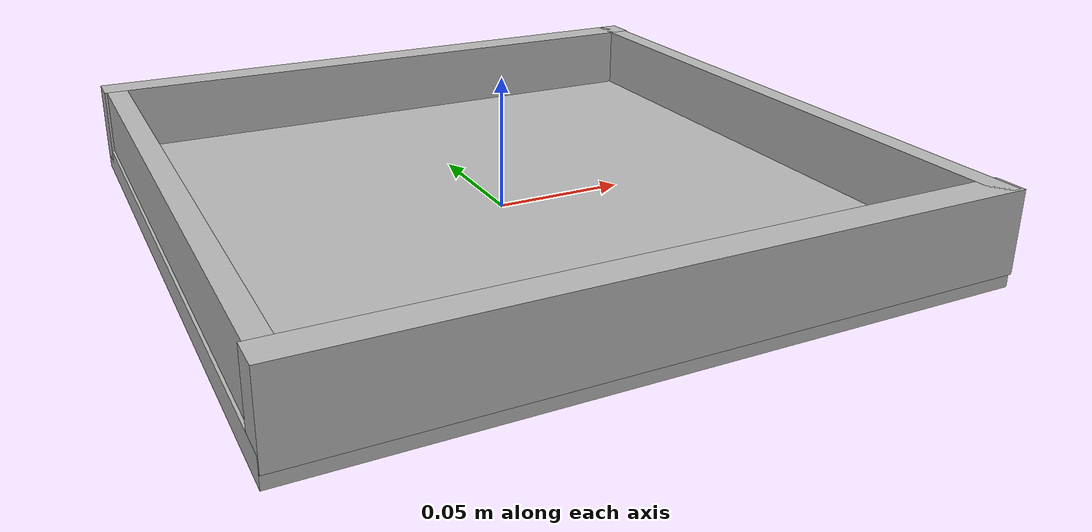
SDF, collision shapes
<?xml version='1.0'?>
<sdf version='1.6'>
  <model name='green_tray'>
    <static>true</static>
    <link name='link'>
      <self_collide>0</self_collide>
      <enable_wind>0</enable_wind>
      <kinematic>0</kinematic>
      <pose frame=''>0 0 0 0 -0 0</pose>
      <gravity>1</gravity>
      <inertial>
        <mass>1</mass>
        <pose frame=''>0 0 0 0 -0 0</pose>
        <inertia>
          <ixx>1</ixx>
          <ixy>0</ixy>
          <ixz>0</ixz>
          <iyy>1</iyy>
          <iyz>0</iyz>
          <izz>1</izz>
        </inertia>
      </inertial>
      <visual name='visual'>
        <pose frame=''>0 0 0.005 0 -0 0</pose>
        <geometry>
          <mesh>
            <scale>0.5 0.5 0.5</scale>
            <uri>model://green_tray/meshes/green_tray.dae</uri>
          </mesh>
        </geometry>
      </visual>
      <collision name='front_wall'>
        <laser_retro>0</laser_retro>
        <max_contacts>10</max_contacts>
        <pose frame=''>0.12 0 0.015 0 -0 0</pose>
        <geometry>
          <box>
            <size>0.008 0.25 0.03</size>
          </box>
        </geometry>
        <surface>
          <friction>
            <ode>
              <mu>1</mu>
              <mu2>1</mu2>
              <fdir1>0 0 0</fdir1>
              <slip1>0</slip1>
              <slip2>0</slip2>
            </ode>
            <torsional>
              <coefficient>1</coefficient>
              <patch_radius>0</patch_radius>
              <surface_radius>0</surface_radius>
              <use_patch_radius>1</use_patch_radius>
              <ode>
                <slip>0</slip>
              </ode>
            </torsional>
          </friction>
          <bounce>
            <restitution_coefficient>0</restitution_coefficient>
            <threshold>1e+06</threshold>
          </bounce>
          <contact>
            <collide_without_contact>0</collide_without_contact>
            <collide_without_contact_bitmask>1</collide_without_contact_bitmask>
            <collide_bitmask>1</collide_bitmask>
            <ode>
              <soft_cfm>0</soft_cfm>
              <soft_erp>0.2</soft_erp>
              <kp>1e+13</kp>
              <kd>1</kd>
              <max_vel>0.01</max_vel>
              <min_depth>0</min_depth>
            </ode>
            <bullet>
              <split_impulse>1</split_impulse>
              <split_impulse_penetration_threshold>-0.01</split_impulse_penetration_threshold>
              <soft_cfm>0</soft_cfm>
              <soft_erp>0.2</soft_erp>
              <kp>1e+13</kp>
              <kd>1</kd>
            </bullet>
          </contact>
        </surface>
      </collision>
      <collision name='right_wall'>
        <laser_retro>0</laser_retro>
        <max_contacts>10</max_contacts>
        <pose frame=''>0 -0.12 0.015 0 -0 0</pose>
        <geometry>
          <box>
            <size>0.25 0.012 0.03</size>
          </box>
        </geometry>
        <surface>
          <friction>
            <ode>
              <mu>1</mu>
              <mu2>1</mu2>
              <fdir1>0 0 0</fdir1>
              <slip1>0</slip1>
              <slip2>0</slip2>
            </ode>
            <torsional>
              <coefficient>1</coefficient>
              <patch_radius>0</patch_radius>
              <surface_radius>0</surface_radius>
              <use_patch_radius>1</use_patch_radius>
              <ode>
                <slip>0</slip>
              </ode>
            </torsional>
          </friction>
          <bounce>
            <restitution_coefficient>0</restitution_coefficient>
            <threshold>1e+06</threshold>
          </bounce>
          <contact>
            <collide_without_contact>0</collide_without_contact>
            <collide_without_contact_bitmask>1</collide_without_contact_bitmask>
            <collide_bitmask>1</collide_bitmask>
            <ode>
              <soft_cfm>0</soft_cfm>
              <soft_erp>0.2</soft_erp>
              <kp>1e+13</kp>
              <kd>1</kd>
              <max_vel>0.01</max_vel>
              <min_depth>0</min_depth>
            </ode>
            <bullet>
              <split_impulse>1</split_impulse>
              <split_impulse_penetration_threshold>-0.01</split_impulse_penetration_threshold>
              <soft_cfm>0</soft_cfm>
              <soft_erp>0.2</soft_erp>
              <kp>1e+13</kp>
              <kd>1</kd>
            </bullet>
          </contact>
        </surface>
      </collision>
      <collision name='bottom'>
        <laser_retro>0</laser_retro>
        <max_contacts>10</max_contacts>
        <pose frame=''>0 0 0 0 -0 0</pose>
        <geometry>
          <box>
            <size>0.25 0.25 0.01</size>
          </box>
        </geometry>
        <surface>
          <friction>
            <ode>
              <mu>1</mu>
              <mu2>1</mu2>
              <fdir1>0 0 0</fdir1>
              <slip1>0</slip1>
              <slip2>0</slip2>
            </ode>
            <torsional>
              <coefficient>1</coefficient>
              <patch_radius>0</patch_radius>
              <surface_radius>0</surface_radius>
              <use_patch_radius>1</use_patch_radius>
              <ode>
                <slip>0</slip>
              </ode>
            </torsional>
          </friction>
          <bounce>
            <restitution_coefficient>0</restitution_coefficient>
            <threshold>1e+06</threshold>
          </bounce>
          <contact>
            <collide_without_contact>0</collide_without_contact>
            <collide_without_contact_bitmask>1</collide_without_contact_bitmask>
            <collide_bitmask>1</collide_bitmask>
            <ode>
              <soft_cfm>0</soft_cfm>
              <soft_erp>0.2</soft_erp>
              <kp>1e+13</kp>
              <kd>1</kd>
              <max_vel>0.01</max_vel>
              <min_depth>0</min_depth>
            </ode>
            <bullet>
              <split_impulse>1</split_impulse>
              <split_impulse_penetration_threshold>-0.01</split_impulse_penetration_threshold>
              <soft_cfm>0</soft_cfm>
              <soft_erp>0.2</soft_erp>
              <kp>1e+13</kp>
              <kd>1</kd>
            </bullet>
          </contact>
        </surface>
      </collision>
      <collision name='left_wall'>
        <laser_retro>0</laser_retro>
        <max_contacts>10</max_contacts>
        <pose frame=''>0 0.12 0.015 0 -0 0</pose>
        <geometry>
          <box>
            <size>0.25 0.012 0.03</size>
          </box>
        </geometry>
        <surface>
          <friction>
            <ode>
              <mu>1</mu>
              <mu2>1</mu2>
              <fdir1>0 0 0</fdir1>
              <slip1>0</slip1>
              <slip2>0</slip2>
            </ode>
            <torsional>
              <coefficient>1</coefficient>
              <patch_radius>0</patch_radius>
              <surface_radius>0</surface_radius>
              <use_patch_radius>1</use_patch_radius>
              <ode>
                <slip>0</slip>
              </ode>
            </torsional>
          </friction>
          <bounce>
            <restitution_coefficient>0</restitution_coefficient>
            <threshold>1e+06</threshold>
          </bounce>
          <contact>
            <collide_without_contact>0</collide_without_contact>
            <collide_without_contact_bitmask>1</collide_without_contact_bitmask>
            <collide_bitmask>1</collide_bitmask>
            <ode>
              <soft_cfm>0</soft_cfm>
              <soft_erp>0.2</soft_erp>
              <kp>1e+13</kp>
              <kd>1</kd>
              <max_vel>0.01</max_vel>
              <min_depth>0</min_depth>
            </ode>
            <bullet>
              <split_impulse>1</split_impulse>
              <split_impulse_penetration_threshold>-0.01</split_impulse_penetration_threshold>
              <soft_cfm>0</soft_cfm>
              <soft_erp>0.2</soft_erp>
              <kp>1e+13</kp>
              <kd>1</kd>
            </bullet>
          </contact>
        </surface>
      </collision>
      <collision name='back_wall'>
        <laser_retro>0</laser_retro>
        <max_contacts>10</max_contacts>
        <pose frame=''>-0.12 0 0.015 0 -0 0</pose>
        <geometry>
          <box>
            <size>0.008 0.25 0.03</size>
          </box>
        </geometry>
        <surface>
          <friction>
            <ode>
              <mu>1</mu>
              <mu2>1</mu2>
              <fdir1>0 0 0</fdir1>
              <slip1>0</slip1>
              <slip2>0</slip2>
            </ode>
            <torsional>
              <coefficient>1</coefficient>
              <patch_radius>0</patch_radius>
              <surface_radius>0</surface_radius>
              <use_patch_radius>1</use_patch_radius>
              <ode>
                <slip>0</slip>
              </ode>
            </torsional>
          </friction>
          <bounce>
            <restitution_coefficient>0</restitution_coefficient>
            <threshold>1e+06</threshold>
          </bounce>
          <contact>
            <collide_without_contact>0</collide_without_contact>
            <collide_without_contact_bitmask>1</collide_without_contact_bitmask>
            <collide_bitmask>1</collide_bitmask>
            <ode>
              <soft_cfm>0</soft_cfm>
              <soft_erp>0.2</soft_erp>
              <kp>1e+13</kp>
              <kd>1</kd>
              <max_vel>0.01</max_vel>
              <min_depth>0</min_depth>
            </ode>
            <bullet>
              <split_impulse>1</split_impulse>
              <split_impulse_penetration_threshold>-0.01</split_impulse_penetration_threshold>
              <soft_cfm>0</soft_cfm>
              <soft_erp>0.2</soft_erp>
              <kp>1e+13</kp>
              <kd>1</kd>
            </bullet>
          </contact>
        </surface>
      </collision>
    </link>
    <static>1</static>
    <allow_auto_disable>1</allow_auto_disable>
  </model>
</sdf>
